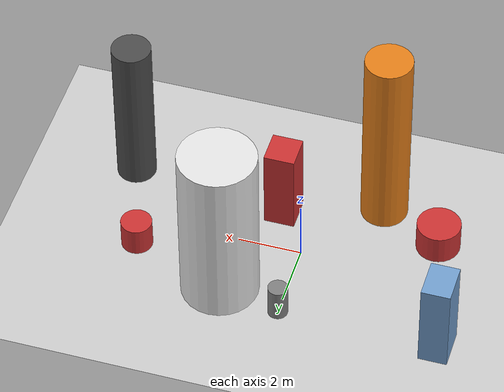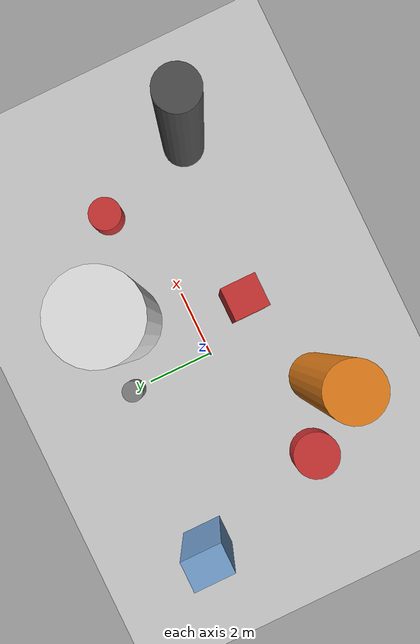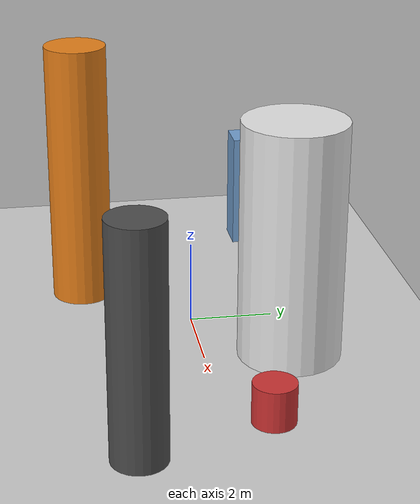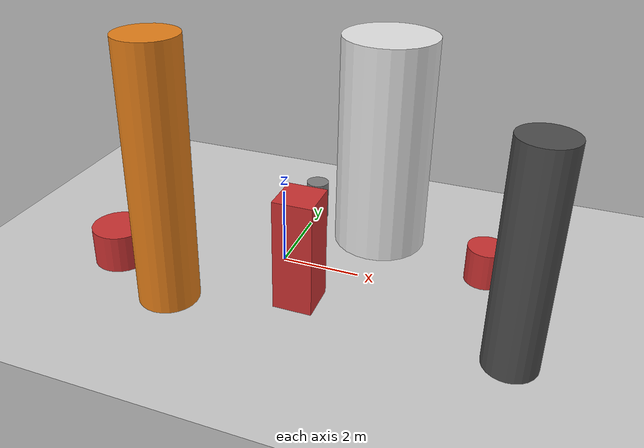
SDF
<?xml version='1.0'?>
<sdf version='1.6'>
  <world name='routeA_rl_v1__support_expansion__rl_test__mixed_3d_low_density_route__000011'>
    <!-- Sun light -->
    <light name='sun' type='directional'>
      <cast_shadows>1</cast_shadows>
      <pose>0 0 10 0 0 0</pose>
      <diffuse>0.8 0.8 0.8 1</diffuse>
      <specular>0.2 0.2 0.2 1</specular>
      <attenuation>
        <range>1000</range>
        <constant>0.9</constant>
        <linear>0.01</linear>
        <quadratic>0.001</quadratic>
      </attenuation>
      <direction>-0.5 0.1 -0.9</direction>
    </light>

    <!-- Ground plane -->
    <model name='ground_plane'>
      <static>1</static>
      <link name='link'>
        <collision name='collision'>
          <geometry>
            <plane>
              <normal>0 0 1</normal>
              <size>100 100</size>
            </plane>
          </geometry>
          <surface>
            <contact>
              <collide_bitmask>65535</collide_bitmask>
              <ode/>
            </contact>
            <friction>
              <ode>
                <mu>100</mu>
                <mu2>50</mu2>
              </ode>
              <torsional><ode/></torsional>
            </friction>
            <bounce/>
          </surface>
          <max_contacts>10</max_contacts>
        </collision>
        <visual name='visual'>
          <cast_shadows>0</cast_shadows>
          <geometry>
            <plane>
              <normal>0 0 1</normal>
              <size>100 100</size>
            </plane>
          </geometry>
          <material>
            <script>
              <uri>file://media/materials/scripts/gazebo.material</uri>
              <n>Gazebo/Grey</n>
            </script>
          </material>
        </visual>
      </link>
    </model>

    <!-- Environment -->
    <magnetic_field>6e-06 2.3e-05 -4.2e-05</magnetic_field>
    <atmosphere type='adiabatic'/>
    <physics name='default_physics' default='0' type='ode'>
      <gravity>0 0 -9.8</gravity>
      <max_step_size>0.004</max_step_size>
      <real_time_factor>1</real_time_factor>
      <real_time_update_rate>250</real_time_update_rate>
    </physics>
    <scene>
      <ambient>0.4 0.4 0.4 1</ambient>
      <background>0.7 0.7 0.7 1</background>
      <shadows>1</shadows>
    </scene>
    <wind/>
    <spherical_coordinates>
      <surface_model>EARTH_WGS84</surface_model>
      <latitude_deg>0</latitude_deg>
      <longitude_deg>0</longitude_deg>
      <elevation>0</elevation>
      <heading_deg>0</heading_deg>
    </spherical_coordinates>

    <!-- ============ OBSTACLES (8) ============ -->
    <model name='low_obs_0'>
      <static>1</static>
      <link name='link'>
        <visual name='visual'>
          <geometry>
            <cylinder>
              <radius>0.6936</radius>
              <length>0.9818</length>
            </cylinder>
          </geometry>
          <material>
            <script>
              <n>Gazebo/Red</n>
              <uri>file://media/materials/scripts/gazebo.material</uri>
            </script>
            <ambient>0.8 0.2 0.2 1</ambient>
          </material>
        </visual>
        <collision name='collision'>
          <geometry>
            <cylinder>
              <radius>0.6936</radius>
              <length>0.9818</length>
            </cylinder>
          </geometry>
          <max_contacts>10</max_contacts>
          <surface>
            <contact><ode/></contact>
            <bounce/>
            <friction>
              <ode><mu>1</mu><mu2>1</mu2></ode>
              <torsional><ode/></torsional>
            </friction>
          </surface>
        </collision>
      </link>
      <pose>-4.0000 -1.5000 0.4909 0 0 0.0000</pose>
    </model>

    <model name='low_obs_1'>
      <static>1</static>
      <link name='link'>
        <visual name='visual'>
          <geometry>
            <cylinder>
              <radius>0.3109</radius>
              <length>1.0936</length>
            </cylinder>
          </geometry>
          <material>
            <script>
              <n>Gazebo/Grey</n>
              <uri>file://media/materials/scripts/gazebo.material</uri>
            </script>
            <ambient>0.5 0.5 0.5 1</ambient>
          </material>
        </visual>
        <collision name='collision'>
          <geometry>
            <cylinder>
              <radius>0.3109</radius>
              <length>1.0936</length>
            </cylinder>
          </geometry>
          <max_contacts>10</max_contacts>
          <surface>
            <contact><ode/></contact>
            <bounce/>
            <friction>
              <ode><mu>1</mu><mu2>1</mu2></ode>
              <torsional><ode/></torsional>
            </friction>
          </surface>
        </collision>
      </link>
      <pose>0.0000 2.5000 0.5468 0 0 0.0000</pose>
    </model>

    <model name='low_obs_2'>
      <static>1</static>
      <link name='link'>
        <visual name='visual'>
          <geometry>
            <cylinder>
              <radius>0.4928</radius>
              <length>0.9503</length>
            </cylinder>
          </geometry>
          <material>
            <script>
              <n>Gazebo/Red</n>
              <uri>file://media/materials/scripts/gazebo.material</uri>
            </script>
            <ambient>0.8 0.2 0.2 1</ambient>
          </material>
        </visual>
        <collision name='collision'>
          <geometry>
            <cylinder>
              <radius>0.4928</radius>
              <length>0.9503</length>
            </cylinder>
          </geometry>
          <max_contacts>10</max_contacts>
          <surface>
            <contact><ode/></contact>
            <bounce/>
            <friction>
              <ode><mu>1</mu><mu2>1</mu2></ode>
              <torsional><ode/></torsional>
            </friction>
          </surface>
        </collision>
      </link>
      <pose>5.0000 1.0000 0.4751 0 0 0.0000</pose>
    </model>

    <model name='tall_obs_0'>
      <static>1</static>
      <link name='link'>
        <visual name='visual'>
          <geometry>
            <cylinder>
              <radius>0.7464</radius>
              <length>6.4985</length>
            </cylinder>
          </geometry>
          <material>
            <script>
              <n>Gazebo/Orange</n>
              <uri>file://media/materials/scripts/gazebo.material</uri>
            </script>
            <ambient>0.9 0.5 0.1 1</ambient>
          </material>
        </visual>
        <collision name='collision'>
          <geometry>
            <cylinder>
              <radius>0.7464</radius>
              <length>6.4985</length>
            </cylinder>
          </geometry>
          <max_contacts>10</max_contacts>
          <surface>
            <contact><ode/></contact>
            <bounce/>
            <friction>
              <ode><mu>1</mu><mu2>1</mu2></ode>
              <torsional><ode/></torsional>
            </friction>
          </surface>
        </collision>
      </link>
      <pose>-2.0000 -2.5000 3.2492 0 0 0.0000</pose>
    </model>

    <model name='tall_obs_1'>
      <static>1</static>
      <link name='link'>
        <visual name='visual'>
          <geometry>
            <cylinder>
              <radius>1.2186</radius>
              <length>5.6917</length>
            </cylinder>
          </geometry>
          <material>
            <script>
              <n>Gazebo/White</n>
              <uri>file://media/materials/scripts/gazebo.material</uri>
            </script>
            <ambient>0.9 0.9 0.9 1</ambient>
          </material>
        </visual>
        <collision name='collision'>
          <geometry>
            <cylinder>
              <radius>1.2186</radius>
              <length>5.6917</length>
            </cylinder>
          </geometry>
          <max_contacts>10</max_contacts>
          <surface>
            <contact><ode/></contact>
            <bounce/>
            <friction>
              <ode><mu>1</mu><mu2>1</mu2></ode>
              <torsional><ode/></torsional>
            </friction>
          </surface>
        </collision>
      </link>
      <pose>2.0000 2.0000 2.8459 0 0 0.0000</pose>
    </model>

    <model name='tall_obs_2'>
      <static>1</static>
      <link name='link'>
        <visual name='visual'>
          <geometry>
            <cylinder>
              <radius>0.6233</radius>
              <length>5.2954</length>
            </cylinder>
          </geometry>
          <material>
            <script>
              <n>Gazebo/DarkGrey</n>
              <uri>file://media/materials/scripts/gazebo.material</uri>
            </script>
            <ambient>0.3 0.3 0.3 1</ambient>
          </material>
        </visual>
        <collision name='collision'>
          <geometry>
            <cylinder>
              <radius>0.6233</radius>
              <length>5.2954</length>
            </cylinder>
          </geometry>
          <max_contacts>10</max_contacts>
          <surface>
            <contact><ode/></contact>
            <bounce/>
            <friction>
              <ode><mu>1</mu><mu2>1</mu2></ode>
              <torsional><ode/></torsional>
            </friction>
          </surface>
        </collision>
      </link>
      <pose>6.0000 -2.0000 2.6477 0 0 0.0000</pose>
    </model>

    <model name='med_obs_0'>
      <static>1</static>
      <link name='link'>
        <visual name='visual'>
          <geometry>
            <box>
              <size>0.8967 1.2091 2.9965</size>
            </box>
          </geometry>
          <material>
            <script>
              <n>Gazebo/Blue</n>
              <uri>file://media/materials/scripts/gazebo.material</uri>
            </script>
            <ambient>0.447 0.624 0.812 1</ambient>
          </material>
        </visual>
        <collision name='collision'>
          <geometry>
            <box>
              <size>0.8967 1.2091 2.9965</size>
            </box>
          </geometry>
          <max_contacts>10</max_contacts>
          <surface>
            <contact><ode/></contact>
            <bounce/>
            <friction>
              <ode><mu>1</mu><mu2>1</mu2></ode>
              <torsional><ode/></torsional>
            </friction>
          </surface>
        </collision>
      </link>
      <pose>-5.0000 2.5000 1.4983 0 0 0.0000</pose>
    </model>

    <model name='med_obs_1'>
      <static>1</static>
      <link name='link'>
        <visual name='visual'>
          <geometry>
            <box>
              <size>0.9652 1.0228 2.8252</size>
            </box>
          </geometry>
          <material>
            <script>
              <n>Gazebo/Red</n>
              <uri>file://media/materials/scripts/gazebo.material</uri>
            </script>
            <ambient>0.8 0.2 0.2 1</ambient>
          </material>
        </visual>
        <collision name='collision'>
          <geometry>
            <box>
              <size>0.9652 1.0228 2.8252</size>
            </box>
          </geometry>
          <max_contacts>10</max_contacts>
          <surface>
            <contact><ode/></contact>
            <bounce/>
            <friction>
              <ode><mu>1</mu><mu2>1</mu2></ode>
              <torsional><ode/></torsional>
            </friction>
          </surface>
        </collision>
      </link>
      <pose>1.0000 -1.5000 1.4126 0 0 0.0000</pose>
    </model>

    <!-- GUI camera -->
    <gui fullscreen='0'>
      <camera name='user_camera'>
        <pose>-15 0 18 0 0.85 0.15</pose>
        <view_controller>orbit</view_controller>
        <projection_type>perspective</projection_type>
      </camera>
    </gui>
  </world>
</sdf>
